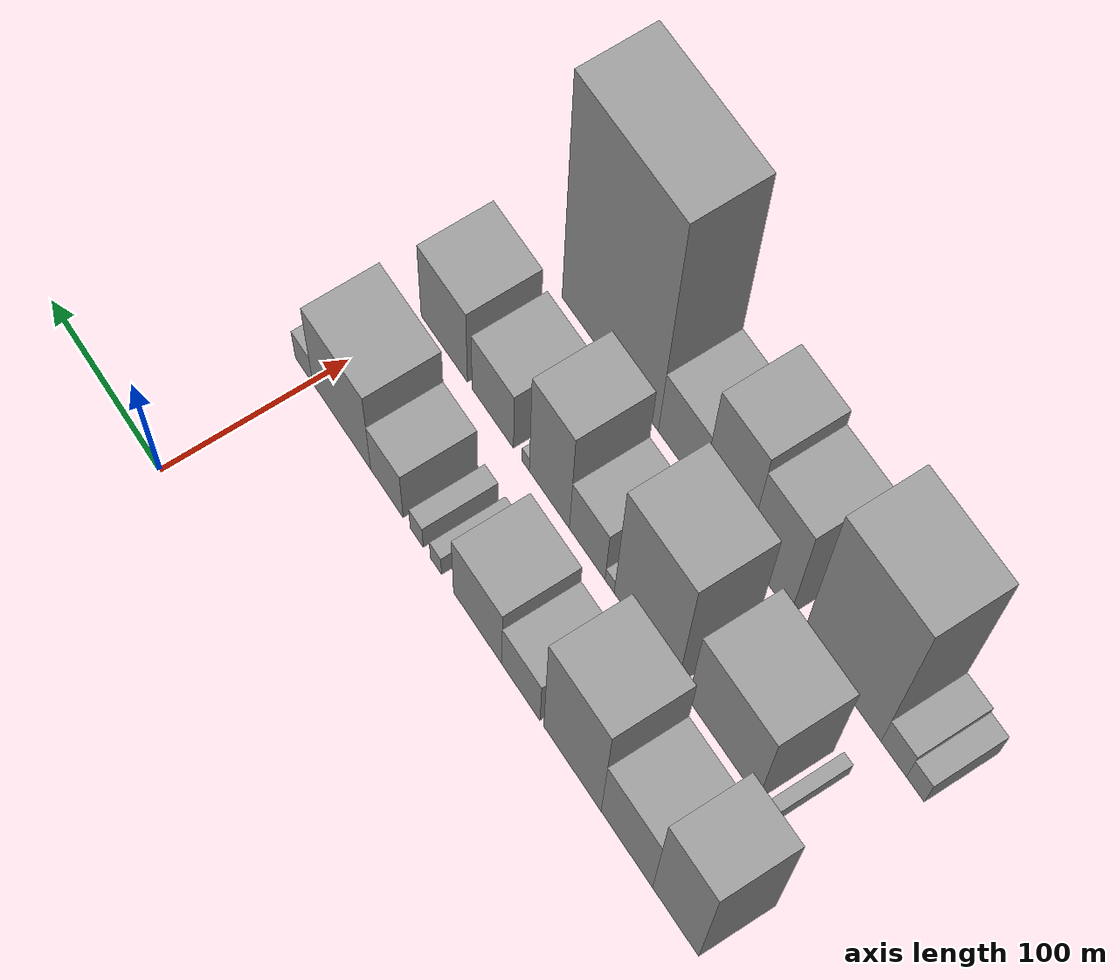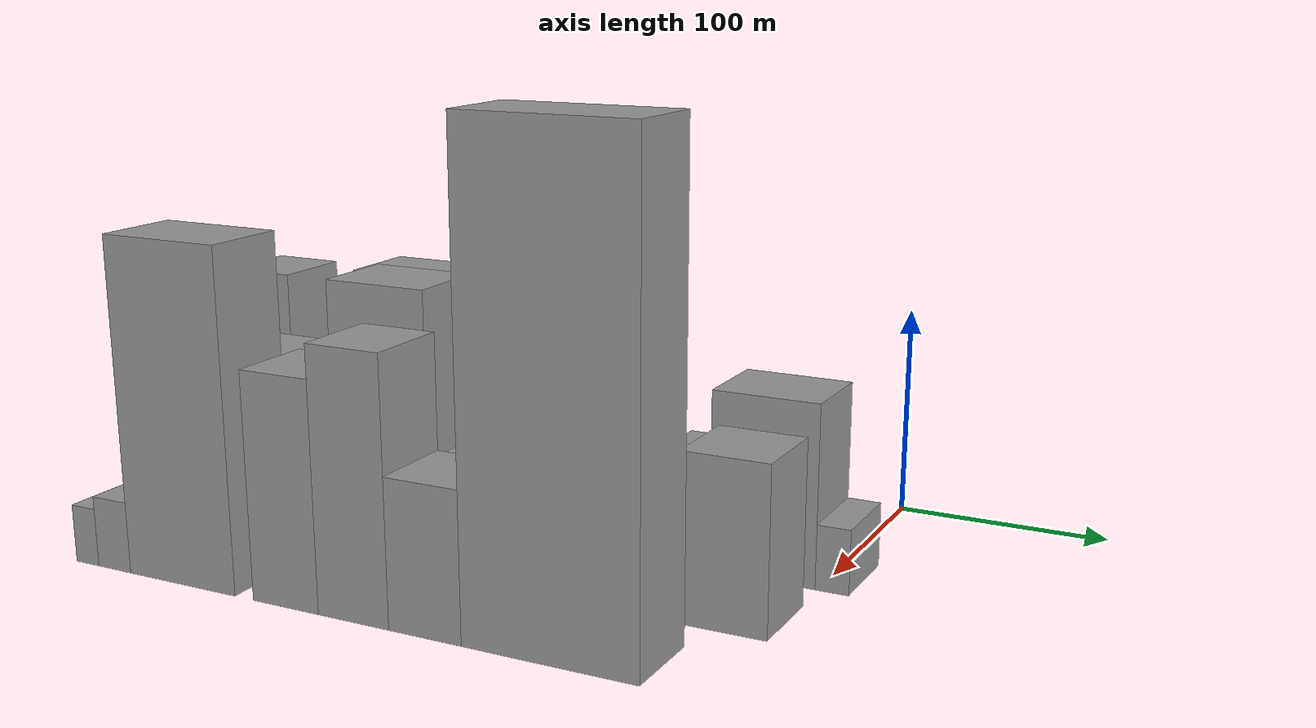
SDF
<sdf version="1.6">
 <world name="default">
  <model name="building_9">
   <static>1</static>
   <pose>100.0000 -297.5319 0 0.000000 0.000000 0.000000</pose>
   <link name="link">
    <pose>0 0 57.00 0 0 0</pose>
    <collision name="collision"><geometry><box><size>40.0000 35.1408 114.0000</size></box></geometry></collision>
    <visual name="visual">
     <cast_shadows>0</cast_shadows>
     <geometry><box><size>40.0000 35.1408 114.0000</size></box></geometry>
     <material>
      <script>
       <uri>model://grey_wall/materials/scripts</uri>
       <uri>model://grey_wall/materials/textures</uri>
       <name>vrc/grey_wall</name>
      </script>
     </material>
    </visual>
   </link>
  </model>
  <model name="building_10">
   <static>1</static>
   <pose>100.0000 -260.0254 0 0.000000 0.000000 0.000000</pose>
   <link name="link">
    <pose>0 0 37.50 0 0 0</pose>
    <collision name="collision"><geometry><box><size>40.0000 39.8721 75.0000</size></box></geometry></collision>
    <visual name="visual">
     <cast_shadows>0</cast_shadows>
     <geometry><box><size>40.0000 39.8721 75.0000</size></box></geometry>
     <material>
      <script>
       <uri>model://grey_wall/materials/scripts</uri>
       <uri>model://grey_wall/materials/textures</uri>
       <name>vrc/grey_wall</name>
      </script>
     </material>
    </visual>
   </link>
  </model>
  <model name="building_11">
   <static>1</static>
   <pose>100.0000 -217.4439 0 0.000000 0.000000 0.000000</pose>
   <link name="link">
    <pose>0 0 60.00 0 0 0</pose>
    <collision name="collision"><geometry><box><size>40.0000 45.2909 120.0000</size></box></geometry></collision>
    <visual name="visual">
     <cast_shadows>0</cast_shadows>
     <geometry><box><size>40.0000 45.2909 120.0000</size></box></geometry>
     <material>
      <script>
       <uri>model://grey_wall/materials/scripts</uri>
       <uri>model://grey_wall/materials/textures</uri>
       <name>vrc/grey_wall</name>
      </script>
     </material>
    </visual>
   </link>
  </model>
  <model name="building_12">
   <static>1</static>
   <pose>100.0000 -176.5121 0 0.000000 0.000000 0.000000</pose>
   <link name="link">
    <pose>0 0 25.50 0 0 0</pose>
    <collision name="collision"><geometry><box><size>40.0000 30.5726 51.0000</size></box></geometry></collision>
    <visual name="visual">
     <cast_shadows>0</cast_shadows>
     <geometry><box><size>40.0000 30.5726 51.0000</size></box></geometry>
     <material>
      <script>
       <uri>model://grey_wall/materials/scripts</uri>
       <uri>model://grey_wall/materials/textures</uri>
       <name>vrc/grey_wall</name>
      </script>
     </material>
    </visual>
   </link>
  </model>
  <model name="building_13">
   <static>1</static>
   <pose>100.0000 -141.3130 0 0.000000 0.000000 0.000000</pose>
   <link name="link">
    <pose>0 0 34.50 0 0 0</pose>
    <collision name="collision"><geometry><box><size>40.0000 39.8254 69.0000</size></box></geometry></collision>
    <visual name="visual">
     <cast_shadows>0</cast_shadows>
     <geometry><box><size>40.0000 39.8254 69.0000</size></box></geometry>
     <material>
      <script>
       <uri>model://grey_wall/materials/scripts</uri>
       <uri>model://grey_wall/materials/textures</uri>
       <name>vrc/grey_wall</name>
      </script>
     </material>
    </visual>
   </link>
  </model>
  <model name="building_14">
   <static>1</static>
   <pose>100.0000 -106.7540 0 0.000000 0.000000 0.000000</pose>
   <link name="link">
    <pose>0 0 10.50 0 0 0</pose>
    <collision name="collision"><geometry><box><size>40.0000 9.2926 21.0000</size></box></geometry></collision>
    <visual name="visual">
     <cast_shadows>0</cast_shadows>
     <geometry><box><size>40.0000 9.2926 21.0000</size></box></geometry>
     <material>
      <script>
       <uri>model://grey_wall/materials/scripts</uri>
       <uri>model://grey_wall/materials/textures</uri>
       <name>vrc/grey_wall</name>
      </script>
     </material>
    </visual>
   </link>
  </model>
  <model name="building_15">
   <static>1</static>
   <pose>100.0000 -90.6586 0 0.000000 0.000000 0.000000</pose>
   <link name="link">
    <pose>0 0 12.00 0 0 0</pose>
    <collision name="collision"><geometry><box><size>40.0000 10.8982 24.0000</size></box></geometry></collision>
    <visual name="visual">
     <cast_shadows>0</cast_shadows>
     <geometry><box><size>40.0000 10.8982 24.0000</size></box></geometry>
     <material>
      <script>
       <uri>model://grey_wall/materials/scripts</uri>
       <uri>model://grey_wall/materials/textures</uri>
       <name>vrc/grey_wall</name>
      </script>
     </material>
    </visual>
   </link>
  </model>
  <model name="building_16">
   <static>1</static>
   <pose>100.0000 -65.3820 0 0.000000 0.000000 0.000000</pose>
   <link name="link">
    <pose>0 0 25.50 0 0 0</pose>
    <collision name="collision"><geometry><box><size>40.0000 27.6551 51.0000</size></box></geometry></collision>
    <visual name="visual">
     <cast_shadows>0</cast_shadows>
     <geometry><box><size>40.0000 27.6551 51.0000</size></box></geometry>
     <material>
      <script>
       <uri>model://grey_wall/materials/scripts</uri>
       <uri>model://grey_wall/materials/textures</uri>
       <name>vrc/grey_wall</name>
      </script>
     </material>
    </visual>
   </link>
  </model>
  <model name="building_17">
   <static>1</static>
   <pose>100.0000 -26.5181 0 0.000000 0.000000 0.000000</pose>
   <link name="link">
    <pose>0 0 42.00 0 0 0</pose>
    <collision name="collision"><geometry><box><size>40.0000 50.0727 84.0000</size></box></geometry></collision>
    <visual name="visual">
     <cast_shadows>0</cast_shadows>
     <geometry><box><size>40.0000 50.0727 84.0000</size></box></geometry>
     <material>
      <script>
       <uri>model://grey_wall/materials/scripts</uri>
       <uri>model://grey_wall/materials/textures</uri>
       <name>vrc/grey_wall</name>
      </script>
     </material>
    </visual>
   </link>
  </model>
  <model name="building_18">
   <static>1</static>
   <pose>100.0000 6.2643 0 0.000000 0.000000 0.000000</pose>
   <link name="link">
    <pose>0 0 15.00 0 0 0</pose>
    <collision name="collision"><geometry><box><size>40.0000 15.4921 30.0000</size></box></geometry></collision>
    <visual name="visual">
     <cast_shadows>0</cast_shadows>
     <geometry><box><size>40.0000 15.4921 30.0000</size></box></geometry>
     <material>
      <script>
       <uri>model://grey_wall/materials/scripts</uri>
       <uri>model://grey_wall/materials/textures</uri>
       <name>vrc/grey_wall</name>
      </script>
     </material>
    </visual>
   </link>
  </model>
  <model name="building_41">
   <static>1</static>
   <pose>160.0000 -281.3883 0 0.000000 0.000000 0.000000</pose>
   <link name="link">
    <pose>0 0 7.50 0 0 0</pose>
    <collision name="collision"><geometry><box><size>40.0000 7.0001 15.0000</size></box></geometry></collision>
    <visual name="visual">
     <cast_shadows>0</cast_shadows>
     <geometry><box><size>40.0000 7.0001 15.0000</size></box></geometry>
     <material>
      <script>
       <uri>model://grey_wall/materials/scripts</uri>
       <uri>model://grey_wall/materials/textures</uri>
       <name>vrc/grey_wall</name>
      </script>
     </material>
    </visual>
   </link>
  </model>
  <model name="building_42">
   <static>1</static>
   <pose>160.0000 -245.9343 0 0.000000 0.000000 0.000000</pose>
   <link name="link">
    <pose>0 0 45.00 0 0 0</pose>
    <collision name="collision"><geometry><box><size>40.0000 53.9079 90.0000</size></box></geometry></collision>
    <visual name="visual">
     <cast_shadows>0</cast_shadows>
     <geometry><box><size>40.0000 53.9079 90.0000</size></box></geometry>
     <material>
      <script>
       <uri>model://grey_wall/materials/scripts</uri>
       <uri>model://grey_wall/materials/textures</uri>
       <name>vrc/grey_wall</name>
      </script>
     </material>
    </visual>
   </link>
  </model>
  <model name="building_43">
   <static>1</static>
   <pose>160.0000 -185.7181 0 0.000000 0.000000 0.000000</pose>
   <link name="link">
    <pose>0 0 64.50 0 0 0</pose>
    <collision name="collision"><geometry><box><size>40.0000 50.5245 129.0000</size></box></geometry></collision>
    <visual name="visual">
     <cast_shadows>0</cast_shadows>
     <geometry><box><size>40.0000 50.5245 129.0000</size></box></geometry>
     <material>
      <script>
       <uri>model://grey_wall/materials/scripts</uri>
       <uri>model://grey_wall/materials/textures</uri>
       <name>vrc/grey_wall</name>
      </script>
     </material>
    </visual>
   </link>
  </model>
  <model name="building_44">
   <static>1</static>
   <pose>160.0000 -156.7554 0 0.000000 0.000000 0.000000</pose>
   <link name="link">
    <pose>0 0 7.50 0 0 0</pose>
    <collision name="collision"><geometry><box><size>40.0000 7.4009 15.0000</size></box></geometry></collision>
    <visual name="visual">
     <cast_shadows>0</cast_shadows>
     <geometry><box><size>40.0000 7.4009 15.0000</size></box></geometry>
     <material>
      <script>
       <uri>model://grey_wall/materials/scripts</uri>
       <uri>model://grey_wall/materials/textures</uri>
       <name>vrc/grey_wall</name>
      </script>
     </material>
    </visual>
   </link>
  </model>
  <model name="building_45">
   <static>1</static>
   <pose>160.0000 -138.5948 0 0.000000 0.000000 0.000000</pose>
   <link name="link">
    <pose>0 0 28.50 0 0 0</pose>
    <collision name="collision"><geometry><box><size>40.0000 28.9203 57.0000</size></box></geometry></collision>
    <visual name="visual">
     <cast_shadows>0</cast_shadows>
     <geometry><box><size>40.0000 28.9203 57.0000</size></box></geometry>
     <material>
      <script>
       <uri>model://grey_wall/materials/scripts</uri>
       <uri>model://grey_wall/materials/textures</uri>
       <name>vrc/grey_wall</name>
      </script>
     </material>
    </visual>
   </link>
  </model>
  <model name="building_46">
   <static>1</static>
   <pose>160.0000 -107.6425 0 0.000000 0.000000 0.000000</pose>
   <link name="link">
    <pose>0 0 54.00 0 0 0</pose>
    <collision name="collision"><geometry><box><size>40.0000 32.9844 108.0000</size></box></geometry></collision>
    <visual name="visual">
     <cast_shadows>0</cast_shadows>
     <geometry><box><size>40.0000 32.9844 108.0000</size></box></geometry>
     <material>
      <script>
       <uri>model://grey_wall/materials/scripts</uri>
       <uri>model://grey_wall/materials/textures</uri>
       <name>vrc/grey_wall</name>
      </script>
     </material>
    </visual>
   </link>
  </model>
  <model name="building_47">
   <static>1</static>
   <pose>160.0000 -88.0593 0 0.000000 0.000000 0.000000</pose>
   <link name="link">
    <pose>0 0 7.50 0 0 0</pose>
    <collision name="collision"><geometry><box><size>40.0000 6.1819 15.0000</size></box></geometry></collision>
    <visual name="visual">
     <cast_shadows>0</cast_shadows>
     <geometry><box><size>40.0000 6.1819 15.0000</size></box></geometry>
     <material>
      <script>
       <uri>model://grey_wall/materials/scripts</uri>
       <uri>model://grey_wall/materials/textures</uri>
       <name>vrc/grey_wall</name>
      </script>
     </material>
    </visual>
   </link>
  </model>
  <model name="building_48">
   <static>1</static>
   <pose>160.0000 -60.5880 0 0.000000 0.000000 0.000000</pose>
   <link name="link">
    <pose>0 0 30.00 0 0 0</pose>
    <collision name="collision"><geometry><box><size>40.0000 34.7608 60.0000</size></box></geometry></collision>
    <visual name="visual">
     <cast_shadows>0</cast_shadows>
     <geometry><box><size>40.0000 34.7608 60.0000</size></box></geometry>
     <material>
      <script>
       <uri>model://grey_wall/materials/scripts</uri>
       <uri>model://grey_wall/materials/textures</uri>
       <name>vrc/grey_wall</name>
      </script>
     </material>
    </visual>
   </link>
  </model>
  <model name="building_49">
   <static>1</static>
   <pose>160.0000 -19.3362 0 0.000000 0.000000 0.000000</pose>
   <link name="link">
    <pose>0 0 37.50 0 0 0</pose>
    <collision name="collision"><geometry><box><size>40.0000 39.7428 75.0000</size></box></geometry></collision>
    <visual name="visual">
     <cast_shadows>0</cast_shadows>
     <geometry><box><size>40.0000 39.7428 75.0000</size></box></geometry>
     <material>
      <script>
       <uri>model://grey_wall/materials/scripts</uri>
       <uri>model://grey_wall/materials/textures</uri>
       <name>vrc/grey_wall</name>
      </script>
     </material>
    </visual>
   </link>
  </model>
  <model name="building_81">
   <static>1</static>
   <pose>220.0000 -306.1816 0 0.000000 0.000000 0.000000</pose>
   <link name="link">
    <pose>0 0 13.50 0 0 0</pose>
    <collision name="collision"><geometry><box><size>40.0000 13.1996 27.0000</size></box></geometry></collision>
    <visual name="visual">
     <cast_shadows>0</cast_shadows>
     <geometry><box><size>40.0000 13.1996 27.0000</size></box></geometry>
     <material>
      <script>
       <uri>model://grey_wall/materials/scripts</uri>
       <uri>model://grey_wall/materials/textures</uri>
       <name>vrc/grey_wall</name>
      </script>
     </material>
    </visual>
   </link>
  </model>
  <model name="building_82">
   <static>1</static>
   <pose>220.0000 -290.1167 0 0.000000 0.000000 0.000000</pose>
   <link name="link">
    <pose>0 0 16.50 0 0 0</pose>
    <collision name="collision"><geometry><box><size>40.0000 18.9301 33.0000</size></box></geometry></collision>
    <visual name="visual">
     <cast_shadows>0</cast_shadows>
     <geometry><box><size>40.0000 18.9301 33.0000</size></box></geometry>
     <material>
      <script>
       <uri>model://grey_wall/materials/scripts</uri>
       <uri>model://grey_wall/materials/textures</uri>
       <name>vrc/grey_wall</name>
      </script>
     </material>
    </visual>
   </link>
  </model>
  <model name="building_83">
   <static>1</static>
   <pose>220.0000 -251.1194 0 0.000000 0.000000 0.000000</pose>
   <link name="link">
    <pose>0 0 76.50 0 0 0</pose>
    <collision name="collision"><geometry><box><size>40.0000 59.0645 153.0000</size></box></geometry></collision>
    <visual name="visual">
     <cast_shadows>0</cast_shadows>
     <geometry><box><size>40.0000 59.0645 153.0000</size></box></geometry>
     <material>
      <script>
       <uri>model://grey_wall/materials/scripts</uri>
       <uri>model://grey_wall/materials/textures</uri>
       <name>vrc/grey_wall</name>
      </script>
     </material>
    </visual>
   </link>
  </model>
  <model name="building_84">
   <static>1</static>
   <pose>220.0000 -194.4190 0 0.000000 0.000000 0.000000</pose>
   <link name="link">
    <pose>0 0 51.00 0 0 0</pose>
    <collision name="collision"><geometry><box><size>40.0000 34.3363 102.0000</size></box></geometry></collision>
    <visual name="visual">
     <cast_shadows>0</cast_shadows>
     <geometry><box><size>40.0000 34.3363 102.0000</size></box></geometry>
     <material>
      <script>
       <uri>model://grey_wall/materials/scripts</uri>
       <uri>model://grey_wall/materials/textures</uri>
       <name>vrc/grey_wall</name>
      </script>
     </material>
    </visual>
   </link>
  </model>
  <model name="building_85">
   <static>1</static>
   <pose>220.0000 -159.4983 0 0.000000 0.000000 0.000000</pose>
   <link name="link">
    <pose>0 0 58.50 0 0 0</pose>
    <collision name="collision"><geometry><box><size>40.0000 35.5050 117.0000</size></box></geometry></collision>
    <visual name="visual">
     <cast_shadows>0</cast_shadows>
     <geometry><box><size>40.0000 35.5050 117.0000</size></box></geometry>
     <material>
      <script>
       <uri>model://grey_wall/materials/scripts</uri>
       <uri>model://grey_wall/materials/textures</uri>
       <name>vrc/grey_wall</name>
      </script>
     </material>
    </visual>
   </link>
  </model>
  <model name="building_86">
   <static>1</static>
   <pose>220.0000 -124.2521 0 0.000000 0.000000 0.000000</pose>
   <link name="link">
    <pose>0 0 33.00 0 0 0</pose>
    <collision name="collision"><geometry><box><size>40.0000 34.9875 66.0000</size></box></geometry></collision>
    <visual name="visual">
     <cast_shadows>0</cast_shadows>
     <geometry><box><size>40.0000 34.9875 66.0000</size></box></geometry>
     <material>
      <script>
       <uri>model://grey_wall/materials/scripts</uri>
       <uri>model://grey_wall/materials/textures</uri>
       <name>vrc/grey_wall</name>
      </script>
     </material>
    </visual>
   </link>
  </model>
  <model name="building_87">
   <static>1</static>
   <pose>220.0000 -66.8857 0 0.000000 0.000000 0.000000</pose>
   <link name="link">
    <pose>0 0 106.50 0 0 0</pose>
    <collision name="collision"><geometry><box><size>40.0000 79.7451 213.0000</size></box></geometry></collision>
    <visual name="visual">
     <cast_shadows>0</cast_shadows>
     <geometry><box><size>40.0000 79.7451 213.0000</size></box></geometry>
     <material>
      <script>
       <uri>model://grey_wall/materials/scripts</uri>
       <uri>model://grey_wall/materials/textures</uri>
       <name>vrc/grey_wall</name>
      </script>
     </material>
    </visual>
   </link>
  </model>
 </world>
</sdf>
